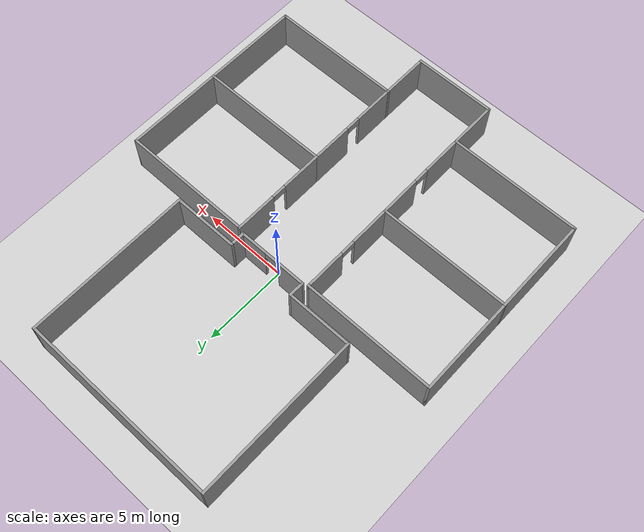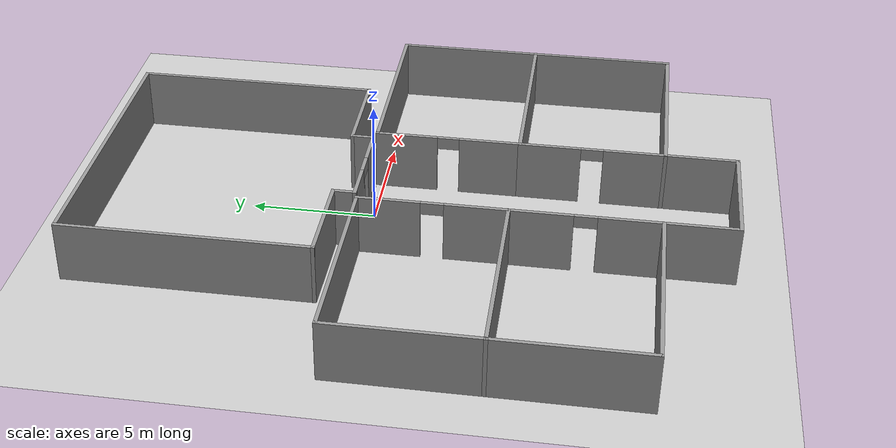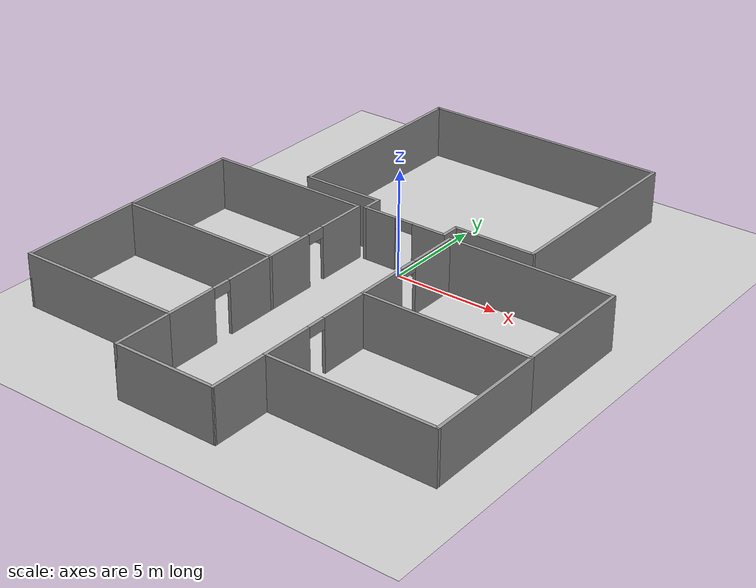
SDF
<sdf version="1.6">
 <world name="default">
  <light name="sun" type="directional">
   <pose>0 0 10 0 -0 0</pose>
   <diffuse>0.8 0.8 0.8 1</diffuse>
   <specular>0.2 0.2 0.2 1</specular>
   <attenuation>
    <range>1000</range>
    <constant>0.9</constant>
    <linear>0.01</linear>
    <quadratic>0.001</quadratic>
   </attenuation>
   <direction>-0.5 0.1 -0.9</direction>
  </light>
  <model name="ground_plane">
   <static>1</static>
   <link name="link">
    <collision name="collision">
     <geometry><plane><normal>0 0 1</normal><size>100 100</size></plane></geometry>
     <surface>
      <contact><collide_bitmask>65535</collide_bitmask></contact>
      <friction><ode><mu>100</mu><mu2>50</mu2></ode></friction>
     </surface>
    </collision>
    <visual name="visual">
     <cast_shadows>0</cast_shadows>
     <geometry><plane><normal>0 0 1</normal><size>100 100</size></plane></geometry>
     <material>
      <script><uri>file://media/materials/scripts/gazebo.material</uri><name>Gazebo/Grey</name></script>
     </material>
    </visual>
   </link>
  </model>
  <gravity>0 0 -9.8</gravity>
  <magnetic_field>6e-06 2.3e-05 -4.2e-05</magnetic_field>
  <atmosphere type="adiabatic"/>
  <physics name="default_physics" default="0" type="ode">
   <max_step_size>0.001</max_step_size>
   <real_time_factor>1</real_time_factor>
   <real_time_update_rate>1000</real_time_update_rate>
  </physics>
  <scene><ambient>0.4 0.4 0.4 1</ambient><background>0.7 0.7 0.7 1</background><shadows>1</shadows></scene>
  <audio><device>default</device></audio>
  <spherical_coordinates>
   <surface_model>EARTH_WGS84</surface_model>
   <latitude_deg>0</latitude_deg>
   <longitude_deg>0</longitude_deg>
   <elevation>0</elevation>
   <heading_deg>0</heading_deg>
  </spherical_coordinates>
  <model name="husky_SAGAT_second_half_docker">
   <pose>-0.030844 5.75394 0 0 -0 0</pose>
   <link name="Wall_10">
    <collision name="Wall_10_Collision">
     <geometry><box><size>4 0.15 2.5</size></box></geometry>
     <pose>0 0 1.25 0 -0 0</pose>
    </collision>
    <visual name="Wall_10_Visual">
     <pose>0 0 1.25 0 -0 0</pose>
     <geometry><box><size>4 0.15 2.5</size></box></geometry>
     <material>
      <script><uri>file://media/materials/scripts/gazebo.material</uri><name>Gazebo/Grey</name></script>
      <ambient>1 1 1 1</ambient>
     </material>
     <meta><layer>0</layer></meta>
    </visual>
    <pose>-4 -4.5 0 0 -0 0</pose>
   </link>
   <link name="Wall_12">
    <collision name="Wall_12_Collision">
     <geometry><box><size>4 0.15 2.5</size></box></geometry>
     <pose>0 0 1.25 0 -0 0</pose>
    </collision>
    <visual name="Wall_12_Visual">
     <pose>0 0 1.25 0 -0 0</pose>
     <geometry><box><size>4 0.15 2.5</size></box></geometry>
     <material>
      <script><uri>file://media/materials/scripts/gazebo.material</uri><name>Gazebo/Grey</name></script>
      <ambient>1 1 1 1</ambient>
     </material>
     <meta><layer>0</layer></meta>
    </visual>
    <pose>4 -4.5 0 0 -0 3.14159</pose>
   </link>
   <link name="Wall_14">
    <collision name="Wall_14_Collision">
     <geometry><box><size>1 0.15 2.5</size></box></geometry>
     <pose>0 0 1.25 0 -0 0</pose>
    </collision>
    <visual name="Wall_14_Visual">
     <pose>0 0 1.25 0 -0 0</pose>
     <geometry><box><size>1 0.15 2.5</size></box></geometry>
     <material>
      <script><uri>file://media/materials/scripts/gazebo.material</uri><name>Gazebo/Grey</name></script>
      <ambient>1 1 1 1</ambient>
     </material>
     <meta><layer>0</layer></meta>
    </visual>
    <pose>-2.075 -4.925 0 0 -0 -1.5708</pose>
   </link>
   <link name="Wall_2">
    <collision name="Wall_2_Collision">
     <geometry><box><size>10 0.15 2.5</size></box></geometry>
     <pose>0 0 1.25 0 -0 0</pose>
    </collision>
    <visual name="Wall_2_Visual">
     <pose>0 0 1.25 0 -0 0</pose>
     <geometry><box><size>10 0.15 2.5</size></box></geometry>
     <material>
      <script><uri>file://media/materials/scripts/gazebo.material</uri><name>Gazebo/Grey</name></script>
      <ambient>1 1 1 1</ambient>
     </material>
     <meta><layer>0</layer></meta>
    </visual>
    <pose>-5.925 0.425 0 0 -0 1.5708</pose>
   </link>
   <link name="Wall_20">
    <collision name="Wall_20_Collision">
     <geometry><box><size>1 0.15 2.5</size></box></geometry>
     <pose>0 0 1.25 0 -0 0</pose>
    </collision>
    <visual name="Wall_20_Visual">
     <pose>0 0 1.25 0 -0 0</pose>
     <geometry><box><size>1 0.15 2.5</size></box></geometry>
     <material>
      <script><uri>file://media/materials/scripts/gazebo.material</uri><name>Gazebo/Grey</name></script>
      <ambient>1 1 1 1</ambient>
     </material>
     <meta><layer>0</layer></meta>
    </visual>
    <pose>2.075 -4.925 0 0 -0 -1.5708</pose>
   </link>
   <link name="Wall_21">
    <pose>0 -5.35 0 0 -0 3.14159</pose>
    <visual name="Wall_21_Visual_0">
     <pose>-1.29994 0 1.25 0 -0 0</pose>
     <geometry><box><size>1.70011 0.15 2.5</size></box></geometry>
     <material>
      <script><uri>file://media/materials/scripts/gazebo.material</uri><name>Gazebo/Grey</name></script>
      <ambient>1 1 1 1</ambient>
     </material>
     <meta><layer>0</layer></meta>
    </visual>
    <collision name="Wall_21_Collision_0">
     <geometry><box><size>1.70011 0.15 2.5</size></box></geometry>
     <pose>-1.29994 0 1.25 0 -0 0</pose>
    </collision>
    <visual name="Wall_21_Visual_1">
     <pose>1.30006 0 1.25 0 -0 0</pose>
     <geometry><box><size>1.69989 0.15 2.5</size></box></geometry>
     <material>
      <script><uri>file://media/materials/scripts/gazebo.material</uri><name>Gazebo/Grey</name></script>
      <ambient>1 1 1 1</ambient>
     </material>
     <meta><layer>0</layer></meta>
    </visual>
    <collision name="Wall_21_Collision_1">
     <geometry><box><size>1.69989 0.15 2.5</size></box></geometry>
     <pose>1.30006 0 1.25 0 -0 0</pose>
    </collision>
    <visual name="Wall_21_Visual_2">
     <pose>0.000113 0 2.25 0 -0 0</pose>
     <geometry><box><size>0.9 0.15 0.5</size></box></geometry>
     <material>
      <script><uri>file://media/materials/scripts/gazebo.material</uri><name>Gazebo/Grey</name></script>
      <ambient>1 1 1 1</ambient>
     </material>
     <meta><layer>0</layer></meta>
    </visual>
    <collision name="Wall_21_Collision_2">
     <geometry><box><size>0.9 0.15 0.5</size></box></geometry>
     <pose>0.000113 0 2.25 0 -0 0</pose>
    </collision>
   </link>
   <link name="Wall_4">
    <collision name="Wall_4_Collision">
     <geometry><box><size>12 0.15 2.5</size></box></geometry>
     <pose>0 0 1.25 0 -0 0</pose>
    </collision>
    <visual name="Wall_4_Visual">
     <pose>0 0 1.25 0 -0 0</pose>
     <geometry><box><size>12 0.15 2.5</size></box></geometry>
     <material>
      <script><uri>file://media/materials/scripts/gazebo.material</uri><name>Gazebo/Grey</name></script>
      <ambient>1 1 1 1</ambient>
     </material>
     <meta><layer>0</layer></meta>
    </visual>
    <pose>0 5.35 0 0 -0 0</pose>
   </link>
   <link name="Wall_7">
    <collision name="Wall_7_Collision">
     <geometry><box><size>10 0.15 2.5</size></box></geometry>
     <pose>0 0 1.25 0 -0 0</pose>
    </collision>
    <visual name="Wall_7_Visual">
     <pose>0 0 1.25 0 -0 0</pose>
     <geometry><box><size>10 0.15 2.5</size></box></geometry>
     <material>
      <script><uri>file://media/materials/scripts/gazebo.material</uri><name>Gazebo/Grey</name></script>
      <ambient>1 1 1 1</ambient>
     </material>
     <meta><layer>0</layer></meta>
    </visual>
    <pose>5.925 0.425 0 0 -0 -1.5708</pose>
   </link>
   <static>1</static>
  </model>
  <model name="husky_SAGAT_first_half_docker">
   <pose>0 -7 0 0 -0 0</pose>
   <link name="Wall_11">
    <collision name="Wall_11_Collision">
     <geometry><box><size>6 0.15 2.5</size></box></geometry>
     <pose>0 0 1.25 0 -0 0</pose>
    </collision>
    <visual name="Wall_11_Visual">
     <pose>0 0 1.25 0 -0 0</pose>
     <geometry><box><size>6 0.15 2.5</size></box></geometry>
     <material>
      <script><uri>file://media/materials/scripts/gazebo.material</uri><name>Gazebo/Grey</name></script>
      <ambient>1 1 1 1</ambient>
     </material>
     <meta><layer>0</layer></meta>
    </visual>
    <pose>-10.28 4.35013 0 0 -0 1.5708</pose>
   </link>
   <link name="Wall_12">
    <collision name="Wall_12_Collision">
     <geometry><box><size>8 0.15 2.5</size></box></geometry>
     <pose>0 0 1.25 0 -0 0</pose>
    </collision>
    <visual name="Wall_12_Visual">
     <pose>0 0 1.25 0 -0 0</pose>
     <geometry><box><size>8 0.15 2.5</size></box></geometry>
     <material>
      <script><uri>file://media/materials/scripts/gazebo.material</uri><name>Gazebo/Grey</name></script>
      <ambient>1 1 1 1</ambient>
     </material>
     <meta><layer>0</layer></meta>
    </visual>
    <pose>-6.355 7.27513 0 0 -0 0</pose>
   </link>
   <link name="Wall_13">
    <pose>-2.43 4.35013 0 0 -0 -1.5708</pose>
    <visual name="Wall_13_Visual_0">
     <pose>-1.72303 0 1.25 0 -0 0</pose>
     <geometry><box><size>2.55394 0.15 2.5</size></box></geometry>
     <material>
      <script><uri>file://media/materials/scripts/gazebo.material</uri><name>Gazebo/Grey</name></script>
      <ambient>1 1 1 1</ambient>
     </material>
     <meta><layer>0</layer></meta>
    </visual>
    <collision name="Wall_13_Collision_0">
     <geometry><box><size>2.55394 0.15 2.5</size></box></geometry>
     <pose>-1.72303 0 1.25 0 -0 0</pose>
    </collision>
    <visual name="Wall_13_Visual_1">
     <pose>1.72697 0 1.25 0 -0 0</pose>
     <geometry><box><size>2.54606 0.15 2.5</size></box></geometry>
     <material>
      <script><uri>file://media/materials/scripts/gazebo.material</uri><name>Gazebo/Grey</name></script>
      <ambient>1 1 1 1</ambient>
     </material>
     <meta><layer>0</layer></meta>
    </visual>
    <collision name="Wall_13_Collision_1">
     <geometry><box><size>2.54606 0.15 2.5</size></box></geometry>
     <pose>1.72697 0 1.25 0 -0 0</pose>
    </collision>
    <visual name="Wall_13_Visual_2">
     <pose>0.003939 0 2.25 0 -0 0</pose>
     <geometry><box><size>0.9 0.15 0.5</size></box></geometry>
     <material>
      <script><uri>file://media/materials/scripts/gazebo.material</uri><name>Gazebo/Grey</name></script>
      <ambient>1 1 1 1</ambient>
     </material>
     <meta><layer>0</layer></meta>
    </visual>
    <collision name="Wall_13_Collision_2">
     <geometry><box><size>0.9 0.15 0.5</size></box></geometry>
     <pose>0.003939 0 2.25 0 -0 0</pose>
    </collision>
   </link>
   <link name="Wall_16">
    <collision name="Wall_16_Collision">
     <geometry><box><size>0.16 0.15 2.5</size></box></geometry>
     <pose>0 0 1.25 0 -0 0</pose>
    </collision>
    <visual name="Wall_16_Visual">
     <pose>0 0 1.25 0 -0 0</pose>
     <geometry><box><size>0.16 0.15 2.5</size></box></geometry>
     <material>
      <script><uri>file://media/materials/scripts/gazebo.material</uri><name>Gazebo/Grey</name></script>
      <ambient>1 1 1 1</ambient>
     </material>
     <meta><layer>0</layer></meta>
    </visual>
    <pose>2.425 -4.42487 0 0 -0 0</pose>
   </link>
   <link name="Wall_17">
    <pose>2.43 -1.49987 0 0 -0 1.5708</pose>
    <visual name="Wall_17_Visual_0">
     <pose>-1.72228 0 1.25 0 -0 0</pose>
     <geometry><box><size>2.55545 0.15 2.5</size></box></geometry>
     <material>
      <script><uri>file://media/materials/scripts/gazebo.material</uri><name>Gazebo/Grey</name></script>
      <ambient>1 1 1 1</ambient>
     </material>
     <meta><layer>0</layer></meta>
    </visual>
    <collision name="Wall_17_Collision_0">
     <geometry><box><size>2.55545 0.15 2.5</size></box></geometry>
     <pose>-1.72228 0 1.25 0 -0 0</pose>
    </collision>
    <visual name="Wall_17_Visual_1">
     <pose>1.72772 0 1.25 0 -0 0</pose>
     <geometry><box><size>2.54455 0.15 2.5</size></box></geometry>
     <material>
      <script><uri>file://media/materials/scripts/gazebo.material</uri><name>Gazebo/Grey</name></script>
      <ambient>1 1 1 1</ambient>
     </material>
     <meta><layer>0</layer></meta>
    </visual>
    <collision name="Wall_17_Collision_1">
     <geometry><box><size>2.54455 0.15 2.5</size></box></geometry>
     <pose>1.72772 0 1.25 0 -0 0</pose>
    </collision>
    <visual name="Wall_17_Visual_2">
     <pose>0.005449 0 2.25 0 -0 0</pose>
     <geometry><box><size>0.9 0.15 0.5</size></box></geometry>
     <material>
      <script><uri>file://media/materials/scripts/gazebo.material</uri><name>Gazebo/Grey</name></script>
      <ambient>1 1 1 1</ambient>
     </material>
     <meta><layer>0</layer></meta>
    </visual>
    <collision name="Wall_17_Collision_2">
     <geometry><box><size>0.9 0.15 0.5</size></box></geometry>
     <pose>0.005449 0 2.25 0 -0 0</pose>
    </collision>
   </link>
   <link name="Wall_18">
    <collision name="Wall_18_Collision">
     <geometry><box><size>8 0.15 2.5</size></box></geometry>
     <pose>0 0 1.25 0 -0 0</pose>
    </collision>
    <visual name="Wall_18_Visual">
     <pose>0 0 1.25 0 -0 0</pose>
     <geometry><box><size>8 0.15 2.5</size></box></geometry>
     <material>
      <script><uri>file://media/materials/scripts/gazebo.material</uri><name>Gazebo/Grey</name></script>
      <ambient>1 1 1 1</ambient>
     </material>
     <meta><layer>0</layer></meta>
    </visual>
    <pose>6.355 1.42513 0 0 -0 0</pose>
   </link>
   <link name="Wall_19">
    <collision name="Wall_19_Collision">
     <geometry><box><size>6 0.15 2.5</size></box></geometry>
     <pose>0 0 1.25 0 -0 0</pose>
    </collision>
    <visual name="Wall_19_Visual">
     <pose>0 0 1.25 0 -0 0</pose>
     <geometry><box><size>6 0.15 2.5</size></box></geometry>
     <material>
      <script><uri>file://media/materials/scripts/gazebo.material</uri><name>Gazebo/Grey</name></script>
      <ambient>1 1 1 1</ambient>
     </material>
     <meta><layer>0</layer></meta>
    </visual>
    <pose>10.28 -1.49987 0 0 -0 -1.5708</pose>
   </link>
   <link name="Wall_20">
    <collision name="Wall_20_Collision">
     <geometry><box><size>8 0.15 2.5</size></box></geometry>
     <pose>0 0 1.25 0 -0 0</pose>
    </collision>
    <visual name="Wall_20_Visual">
     <pose>0 0 1.25 0 -0 0</pose>
     <geometry><box><size>8 0.15 2.5</size></box></geometry>
     <material>
      <script><uri>file://media/materials/scripts/gazebo.material</uri><name>Gazebo/Grey</name></script>
      <ambient>1 1 1 1</ambient>
     </material>
     <meta><layer>0</layer></meta>
    </visual>
    <pose>6.355 -4.42487 0 0 -0 3.14159</pose>
   </link>
   <link name="Wall_24">
    <pose>2.43 4.35013 0 0 -0 1.5708</pose>
    <visual name="Wall_24_Visual_0">
     <pose>-1.72718 0 1.25 0 -0 0</pose>
     <geometry><box><size>2.54563 0.15 2.5</size></box></geometry>
     <material>
      <script><uri>file://media/materials/scripts/gazebo.material</uri><name>Gazebo/Grey</name></script>
      <ambient>1 1 1 1</ambient>
     </material>
     <meta><layer>0</layer></meta>
    </visual>
    <collision name="Wall_24_Collision_0">
     <geometry><box><size>2.54563 0.15 2.5</size></box></geometry>
     <pose>-1.72718 0 1.25 0 -0 0</pose>
    </collision>
    <visual name="Wall_24_Visual_1">
     <pose>1.72282 0 1.25 0 -0 0</pose>
     <geometry><box><size>2.55437 0.15 2.5</size></box></geometry>
     <material>
      <script><uri>file://media/materials/scripts/gazebo.material</uri><name>Gazebo/Grey</name></script>
      <ambient>1 1 1 1</ambient>
     </material>
     <meta><layer>0</layer></meta>
    </visual>
    <collision name="Wall_24_Collision_1">
     <geometry><box><size>2.55437 0.15 2.5</size></box></geometry>
     <pose>1.72282 0 1.25 0 -0 0</pose>
    </collision>
    <visual name="Wall_24_Visual_2">
     <pose>-0.004369 0 2.25 0 -0 0</pose>
     <geometry><box><size>0.9 0.15 0.5</size></box></geometry>
     <material>
      <script><uri>file://media/materials/scripts/gazebo.material</uri><name>Gazebo/Grey</name></script>
      <ambient>1 1 1 1</ambient>
     </material>
     <meta><layer>0</layer></meta>
    </visual>
    <collision name="Wall_24_Collision_2">
     <geometry><box><size>0.9 0.15 0.5</size></box></geometry>
     <pose>-0.004369 0 2.25 0 -0 0</pose>
    </collision>
   </link>
   <link name="Wall_25">
    <collision name="Wall_25_Collision">
     <geometry><box><size>8 0.15 2.5</size></box></geometry>
     <pose>0 0 1.25 0 -0 0</pose>
    </collision>
    <visual name="Wall_25_Visual">
     <pose>0 0 1.25 0 -0 0</pose>
     <geometry><box><size>8 0.15 2.5</size></box></geometry>
     <material>
      <script><uri>file://media/materials/scripts/gazebo.material</uri><name>Gazebo/Grey</name></script>
      <ambient>1 1 1 1</ambient>
     </material>
     <meta><layer>0</layer></meta>
    </visual>
    <pose>6.355 7.27513 0 0 -0 0</pose>
   </link>
   <link name="Wall_26">
    <collision name="Wall_26_Collision">
     <geometry><box><size>6 0.15 2.5</size></box></geometry>
     <pose>0 0 1.25 0 -0 0</pose>
    </collision>
    <visual name="Wall_26_Visual">
     <pose>0 0 1.25 0 -0 0</pose>
     <geometry><box><size>6 0.15 2.5</size></box></geometry>
     <material>
      <script><uri>file://media/materials/scripts/gazebo.material</uri><name>Gazebo/Grey</name></script>
      <ambient>1 1 1 1</ambient>
     </material>
     <meta><layer>0</layer></meta>
    </visual>
    <pose>10.28 4.35013 0 0 -0 -1.5708</pose>
   </link>
   <link name="Wall_29">
    <collision name="Wall_29_Collision">
     <geometry><box><size>3 0.15 2.5</size></box></geometry>
     <pose>0 0 1.25 0 -0 0</pose>
    </collision>
    <visual name="Wall_29_Visual">
     <pose>0 0 1.25 0 -0 0</pose>
     <geometry><box><size>3 0.15 2.5</size></box></geometry>
     <material>
      <script><uri>file://media/materials/scripts/gazebo.material</uri><name>Gazebo/Grey</name></script>
      <ambient>1 1 1 1</ambient>
     </material>
     <meta><layer>0</layer></meta>
    </visual>
    <pose>-2.43 -5.84987 0 0 -0 -1.5708</pose>
   </link>
   <link name="Wall_30">
    <collision name="Wall_30_Collision">
     <geometry><box><size>5 0.15 2.5</size></box></geometry>
     <pose>0 0 1.25 0 -0 0</pose>
    </collision>
    <visual name="Wall_30_Visual">
     <pose>0 0 1.25 0 -0 0</pose>
     <geometry><box><size>5 0.15 2.5</size></box></geometry>
     <material>
      <script><uri>file://media/materials/scripts/gazebo.material</uri><name>Gazebo/Grey</name></script>
      <ambient>1 1 1 1</ambient>
     </material>
     <meta><layer>0</layer></meta>
    </visual>
    <pose>-0.005 -7.27487 0 0 -0 0</pose>
   </link>
   <link name="Wall_31">
    <collision name="Wall_31_Collision">
     <geometry><box><size>3.00002 0.15 2.5</size></box></geometry>
     <pose>0 0 1.25 0 -0 0</pose>
    </collision>
    <visual name="Wall_31_Visual">
     <pose>0 0 1.25 0 -0 0</pose>
     <geometry><box><size>3.00002 0.15 2.5</size></box></geometry>
     <material>
      <script><uri>file://media/materials/scripts/gazebo.material</uri><name>Gazebo/Grey</name></script>
      <ambient>1 1 1 1</ambient>
     </material>
     <meta><layer>0</layer></meta>
    </visual>
    <pose>2.425 -5.84987 0 0 -0 1.56729</pose>
   </link>
   <link name="Wall_4">
    <collision name="Wall_4_Collision">
     <geometry><box><size>8 0.15 2.5</size></box></geometry>
     <pose>0 0 1.25 0 -0 0</pose>
    </collision>
    <visual name="Wall_4_Visual">
     <pose>0 0 1.25 0 -0 0</pose>
     <geometry><box><size>8 0.15 2.5</size></box></geometry>
     <material>
      <script><uri>file://media/materials/scripts/gazebo.material</uri><name>Gazebo/Grey</name></script>
      <ambient>1 1 1 1</ambient>
     </material>
     <meta><layer>0</layer></meta>
    </visual>
    <pose>-6.355 -4.42487 0 0 -0 0</pose>
   </link>
   <link name="Wall_5">
    <pose>-2.43 -1.49987 0 0 -0 1.5708</pose>
    <visual name="Wall_5_Visual_0">
     <pose>-1.7262 0 1.25 0 -0 0</pose>
     <geometry><box><size>2.5476 0.15 2.5</size></box></geometry>
     <material>
      <script><uri>file://media/materials/scripts/gazebo.material</uri><name>Gazebo/Grey</name></script>
      <ambient>1 1 1 1</ambient>
     </material>
     <meta><layer>0</layer></meta>
    </visual>
    <collision name="Wall_5_Collision_0">
     <geometry><box><size>2.5476 0.15 2.5</size></box></geometry>
     <pose>-1.7262 0 1.25 0 -0 0</pose>
    </collision>
    <visual name="Wall_5_Visual_1">
     <pose>1.7238 0 1.25 0 -0 0</pose>
     <geometry><box><size>2.5524 0.15 2.5</size></box></geometry>
     <material>
      <script><uri>file://media/materials/scripts/gazebo.material</uri><name>Gazebo/Grey</name></script>
      <ambient>1 1 1 1</ambient>
     </material>
     <meta><layer>0</layer></meta>
    </visual>
    <collision name="Wall_5_Collision_1">
     <geometry><box><size>2.5524 0.15 2.5</size></box></geometry>
     <pose>1.7238 0 1.25 0 -0 0</pose>
    </collision>
    <visual name="Wall_5_Visual_2">
     <pose>-0.002396 0 2.25 0 -0 0</pose>
     <geometry><box><size>0.9 0.15 0.5</size></box></geometry>
     <material>
      <script><uri>file://media/materials/scripts/gazebo.material</uri><name>Gazebo/Grey</name></script>
      <ambient>1 1 1 1</ambient>
     </material>
     <meta><layer>0</layer></meta>
    </visual>
    <collision name="Wall_5_Collision_2">
     <geometry><box><size>0.9 0.15 0.5</size></box></geometry>
     <pose>-0.002396 0 2.25 0 -0 0</pose>
    </collision>
   </link>
   <link name="Wall_6">
    <collision name="Wall_6_Collision">
     <geometry><box><size>8 0.15 2.5</size></box></geometry>
     <pose>0 0 1.25 0 -0 0</pose>
    </collision>
    <visual name="Wall_6_Visual">
     <pose>0 0 1.25 0 -0 0</pose>
     <geometry><box><size>8 0.15 2.5</size></box></geometry>
     <material>
      <script><uri>file://media/materials/scripts/gazebo.material</uri><name>Gazebo/Grey</name></script>
      <ambient>1 1 1 1</ambient>
     </material>
     <meta><layer>0</layer></meta>
    </visual>
    <pose>-6.355 1.42513 0 0 -0 3.14159</pose>
   </link>
   <link name="Wall_7">
    <collision name="Wall_7_Collision">
     <geometry><box><size>6 0.15 2.5</size></box></geometry>
     <pose>0 0 1.25 0 -0 0</pose>
    </collision>
    <visual name="Wall_7_Visual">
     <pose>0 0 1.25 0 -0 0</pose>
     <geometry><box><size>6 0.15 2.5</size></box></geometry>
     <material>
      <script><uri>file://media/materials/scripts/gazebo.material</uri><name>Gazebo/Grey</name></script>
      <ambient>1 1 1 1</ambient>
     </material>
     <meta><layer>0</layer></meta>
    </visual>
    <pose>-10.28 -1.49987 0 0 -0 -1.5708</pose>
   </link>
   <static>1</static>
  </model>
 </world>
</sdf>
